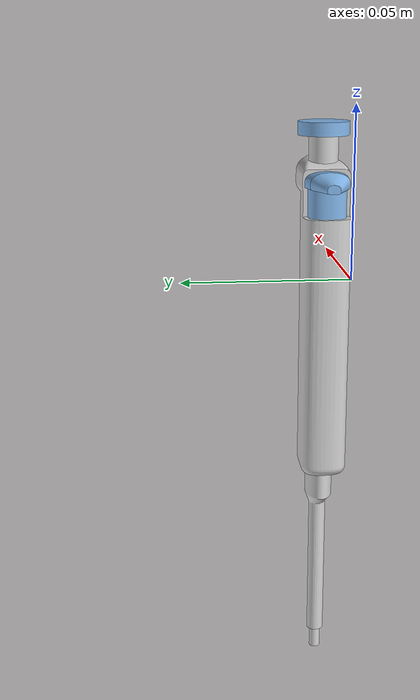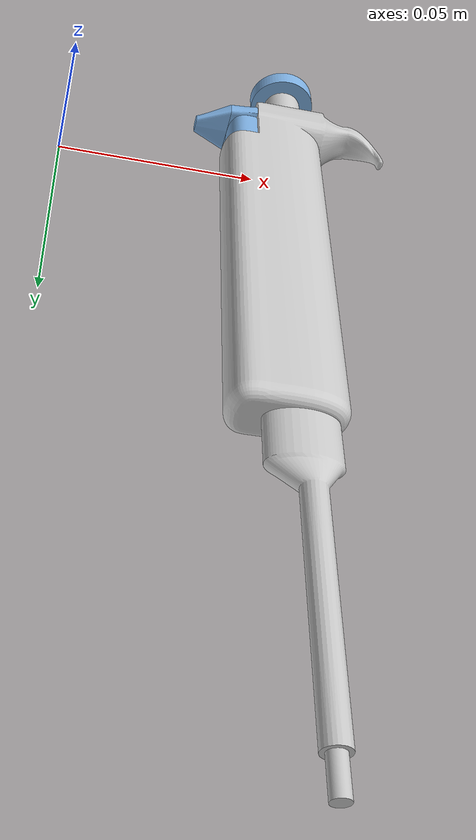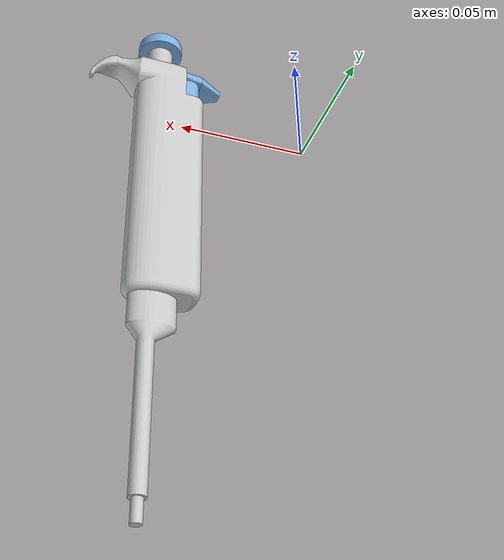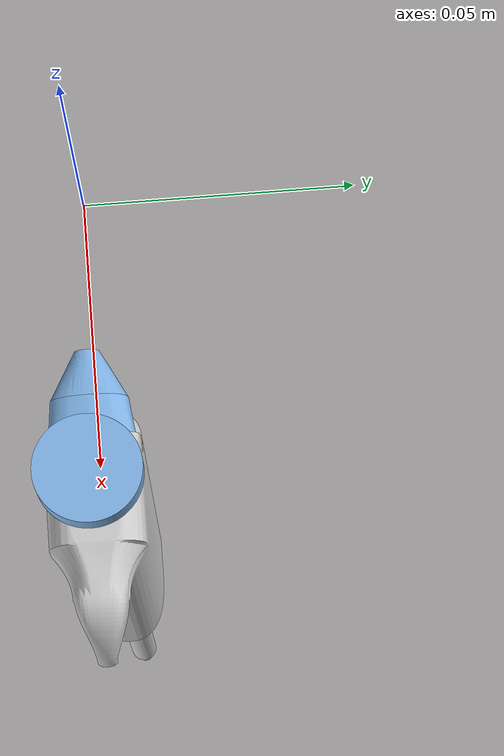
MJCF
<mujoco model="pipette_no_tip">
  <compiler angle="radian" meshdir="../../assets/"/>

  <asset>
    <mesh name="pipette_connector_visual" file="tool/pipette/connector_visual.obj" scale="0.1 0.1 0.1"/>
    <mesh name="pipette_knob_visual" file="tool/pipette/knob_visual.obj" scale="0.1 0.1 0.1"/>
    <mesh name="pipette_tube_visual" file="tool/pipette/tube_visual.obj" scale="0.1 0.1 0.1"/>
    <mesh name="pipette_tube_collision_0" file="tool/pipette/tube_collision_0.obj" scale="0.1 0.1 0.1"/>
    <mesh name="pipette_tube_collision_1" file="tool/pipette/tube_collision_1.obj" scale="0.1 0.1 0.1"/>
    <mesh name="pipette_pusher_right1_visual" file="tool/pipette/pusher_right1_visual.obj" scale="0.1 0.1 0.1"/>
    <mesh name="pipette_pusher_right1_collision_0" file="tool/pipette/pusher_right1_collision_0.obj" scale="0.1 0.1 0.1"/>
    <mesh name="pipette_pusher_right2_visual" file="tool/pipette/pusher_right2_visual.obj" scale="0.1 0.1 0.1"/>
    <mesh name="pipette_pusher_right2_collision_0" file="tool/pipette/pusher_right2_collision_0.obj" scale="0.1 0.1 0.1"/>
    <mesh name="pipette_body_visual" file="tool/pipette/body_visual.obj" scale="0.1 0.1 0.1"/>
    <mesh name="pipette_body_collision_0" file="tool/pipette/body_collision_0.obj" scale="0.1 0.1 0.1"/>
    <mesh name="pipette_body_collision_1" file="tool/pipette/body_collision_1.obj" scale="0.1 0.1 0.1"/>
    <mesh name="pipette_body_collision_2" file="tool/pipette/body_collision_2.obj" scale="0.1 0.1 0.1"/>
    <mesh name="pipette_body_collision_3" file="tool/pipette/body_collision_3.obj" scale="0.1 0.1 0.1"/>
    <mesh name="pipette_pusher_mid_visual" file="tool/pipette/pusher_mid_visual.obj" scale="0.1 0.1 0.1"/>
    <mesh name="pipette_pusher_right3_visual" file="tool/pipette/pusher_right3_visual.obj" scale="0.1 0.1 0.1"/>
    <mesh name="pipette_pusher_right3_collision_0" file="tool/pipette/pusher_right3_collision_0.obj" scale="0.1 0.1 0.1"/>
    <mesh name="pipette_pusher_right3_collision_1" file="tool/pipette/pusher_right3_collision_1.obj" scale="0.1 0.1 0.1"/>

    <material name="pipette_plastic" rgba="0.8 0.8 0.8 1"/>
    <material name="pipette_button" rgba="0.5 0.7 0.9 1"/>
  </asset>

  <worldbody>
    <body name="pipette" pos="0.06 0 -0.15" quat="1.32679e-06 0 0 1">
      <frame name="tip" pos="0 0 -0.003">
         <site name="tip_site" pos="0 0 -0.05" quat="1 0 0 0" type="sphere" group="5" rgba="0.9 0.9 0.9 1" size="0.0005"/>
      </frame>
      <geom type="mesh" contype="0" conaffinity="0" group="2" mesh="pipette_body_visual" material="pipette_plastic"/>
      <geom type="mesh" group="3" mesh="pipette_body_collision_0"/>
      <geom type="mesh" group="3" mesh="pipette_body_collision_1"/>
      <geom type="mesh" group="3" mesh="pipette_body_collision_2"/>
      <geom type="mesh" group="3" mesh="pipette_body_collision_3"/>
      <geom type="mesh" contype="0" conaffinity="0" group="2" mesh="pipette_tube_visual" material="pipette_plastic"/>
      <geom type="mesh" group="3" mesh="pipette_tube_collision_0"/>
      <geom type="mesh" group="3" mesh="pipette_tube_collision_1"/>
      <geom name="connector_visual" type="mesh" contype="0" conaffinity="0" group="2" mesh="pipette_connector_visual" material="pipette_plastic"/>
      <geom name="connector_collision" size="0.00199955 0.004" pos="-1.44533e-09 0 -0.004" type="cylinder" conaffinity="5" group="3"/>
      <body name="pipette_ejector">
        <joint name="pipette_ejector" pos="0 0 0" axis="0 0 1" type="slide" springref="0.03" stiffness="1" limited="true" range="-0.0095 0" damping="0.1"/>
        <geom type="mesh" contype="0" conaffinity="0" group="2" mesh="pipette_pusher_right1_visual" material="pipette_button"/>
        <geom type="mesh" group="3" mesh="pipette_pusher_right1_collision_0"/>
        <geom type="mesh" contype="0" conaffinity="0" group="2" mesh="pipette_pusher_right2_visual" material="pipette_button"/>
        <geom type="mesh" group="3" mesh="pipette_pusher_right2_collision_0"/>
        <geom type="mesh" contype="0" conaffinity="0" group="2" mesh="pipette_pusher_right3_visual" material="pipette_button"/>
        <geom type="mesh" group="3" mesh="pipette_pusher_right3_collision_0"/>
        <geom type="mesh" group="3" mesh="pipette_pusher_right3_collision_1"/>
      </body>
      <body name="pipette_button">
        <joint name="pipette_button" pos="0 0 0" axis="0 0 1" type="slide" springref="0.04" stiffness="1" limited="true" range="-0.008 0" damping="1"/>
        <geom type="mesh" contype="0" conaffinity="0" group="2" mesh="pipette_pusher_mid_visual" material="pipette_plastic"/>
        <geom size="0.00502107 0.00485" pos="-9.75971e-10 0 0.181306" type="cylinder" group="3"/>
        <body name="pipette_knob">
          <joint name="knob" pos="0 0 0" axis="0 0 1" range="-1.5 1.5" damping="1" frictionloss="0.0001"/>
          <geom type="mesh" contype="0" conaffinity="0" group="2" mesh="pipette_knob_visual" material="pipette_button"/>
          <geom size="0.00869505 0.00225" pos="0 0 0.188406" type="cylinder" group="3"/>
        </body>
      </body>
    </body>
  </worldbody>

  <contact>
    <exclude body1="pipette" body2="pipette_button"/>
    <exclude body1="pipette" body2="pipette_knob"/>
    <exclude body1="pipette" body2="pipette_ejector"/>
  </contact>
</mujoco>
